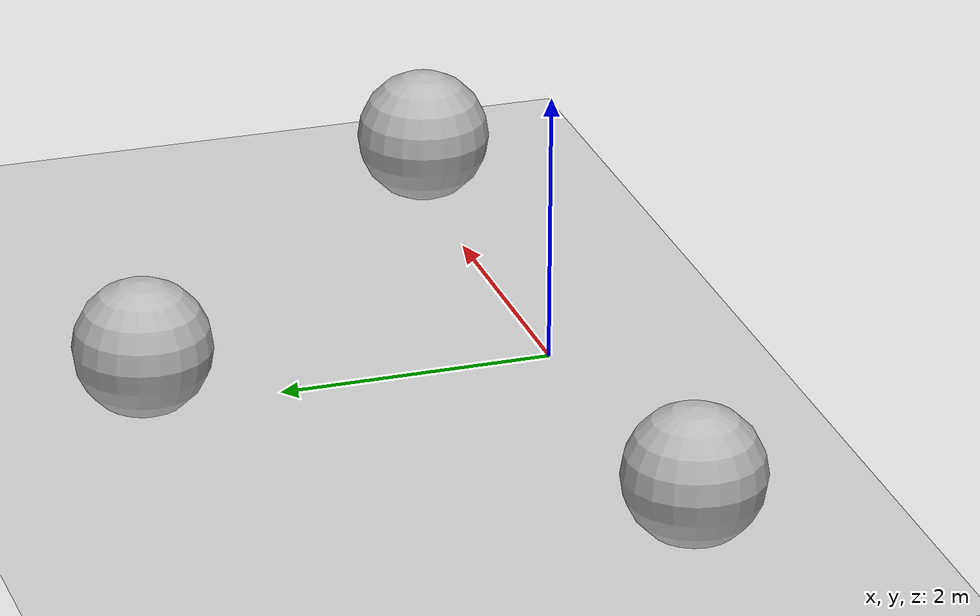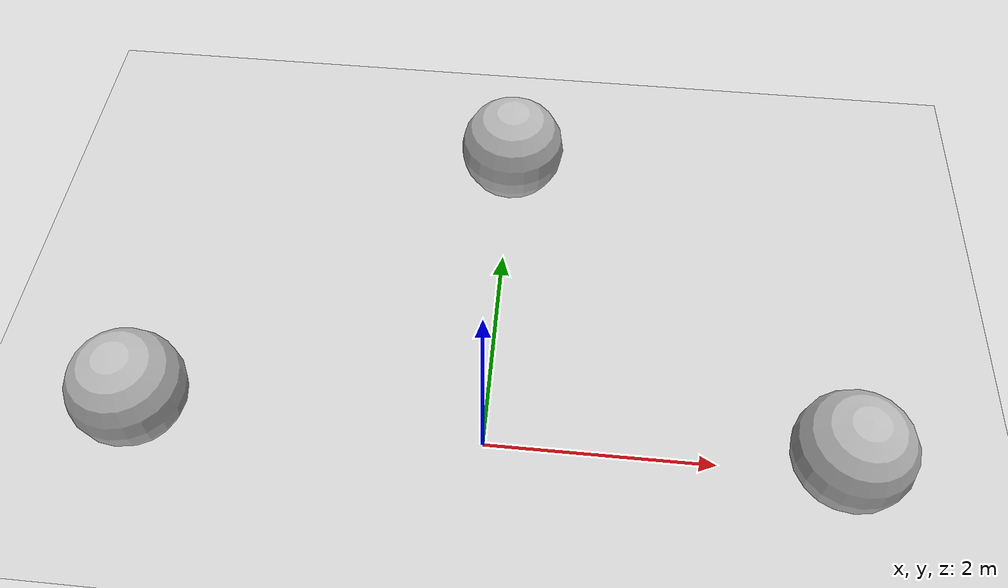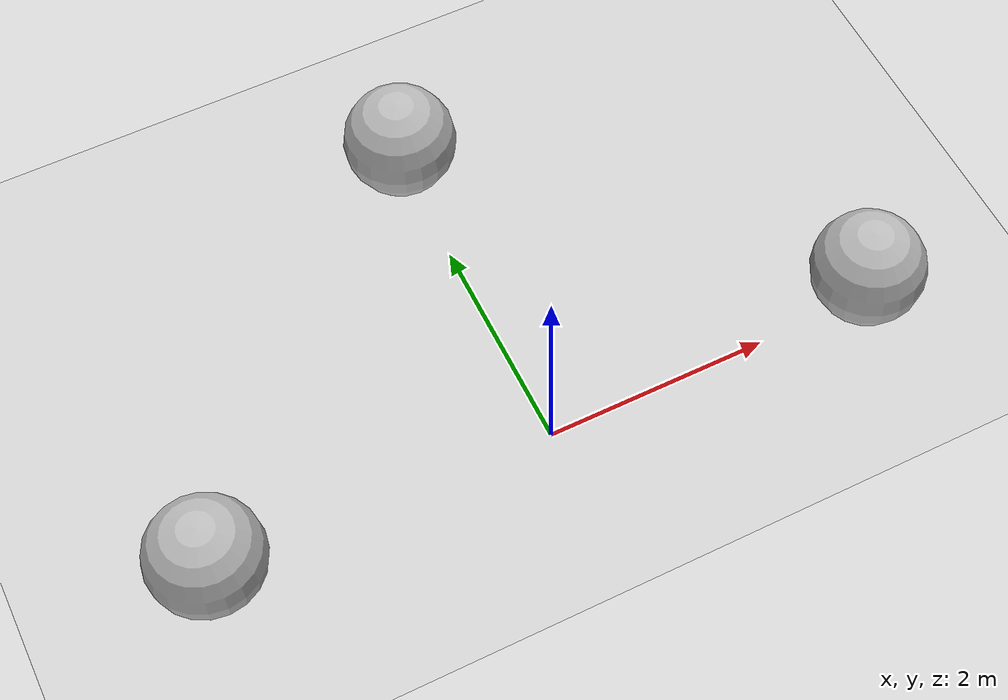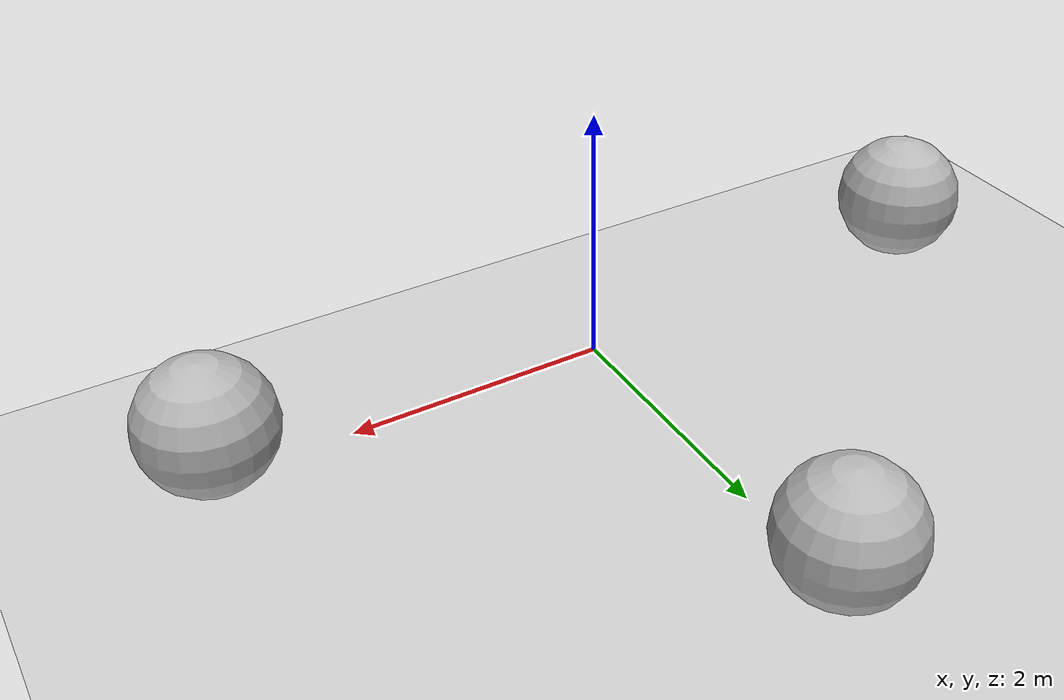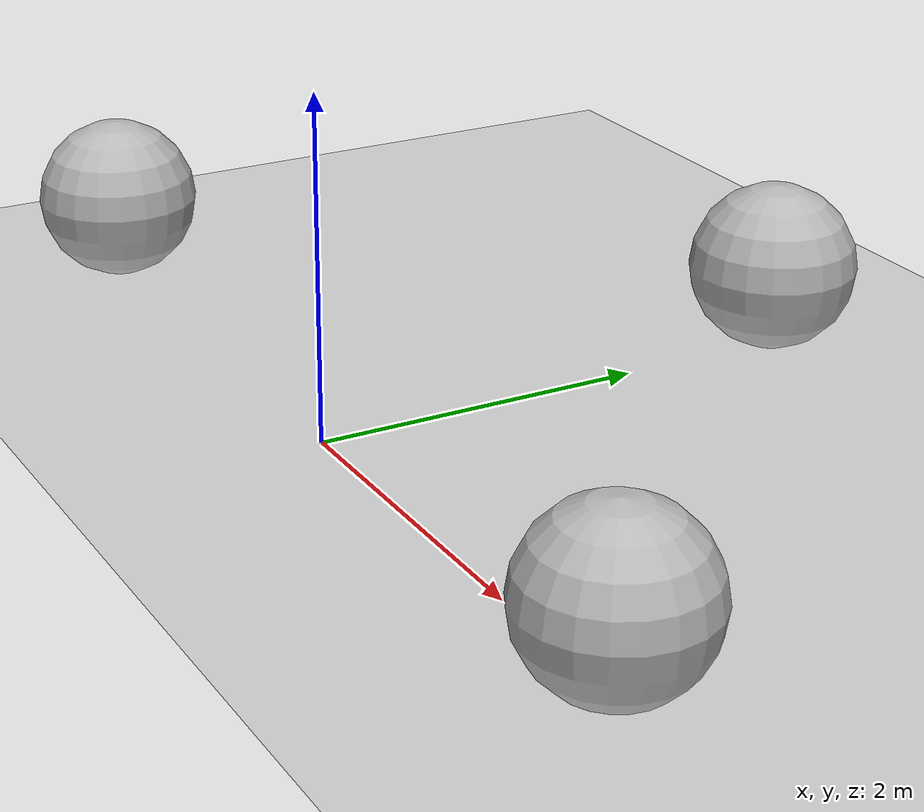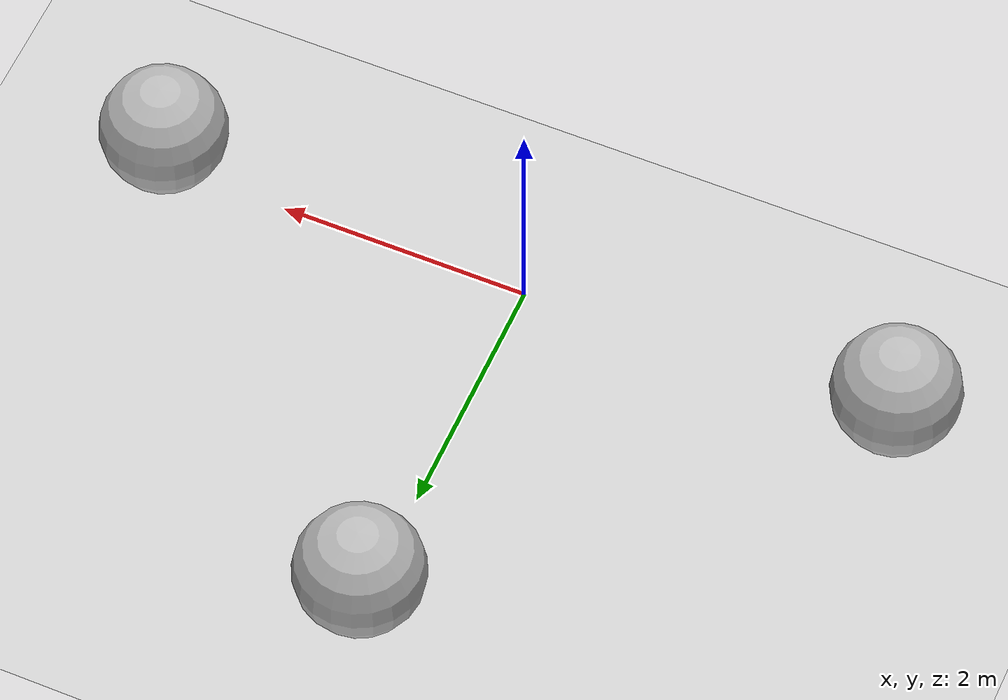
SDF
<?xml version="1.0"?>
<sdf version="1.4">
  <world name="default">

    <include>
      <uri>model://sun</uri>
    </include>
    <include>
      <uri>model://ground_plane</uri>
    </include>

    <model name="my_env">
        <static>true</static>
        <link name="sphere1">
	<pose>-3 0 0.5 0 0 0</pose>
          <collision name='sphere1_collision'>
            <pose>0 0 0 0 0 0</pose>
            <geometry>
                <sphere>
                <radius>.5</radius>
              </sphere>
            </geometry>

            <surface>
              <friction>
                <ode>
                  <mu>0</mu>
                  <mu2>0</mu2>
                  <slip1>1.0</slip1>
                  <slip2>1.0</slip2>
                </ode>
              </friction>
            </surface>
          </collision>

          <visual name='sphere1_visual'>
            <pose>0 0 0 0 0 0</pose>
            <geometry>
              <sphere>
                <radius>.5</radius>
              </sphere>
            </geometry>
          </visual>
        </link>
    </model>

    <model name="my_env2">
        <static>true</static>
        <link name="sphere2">
	<pose>3 0 0.5 0 0 0</pose>
          <collision name='sphere2_collision'>
            <pose>0 0 0 0 0 0</pose>
            <geometry>
                <sphere>
                <radius>.5</radius>
              </sphere>
            </geometry>

            <surface>
              <friction>
                <ode>
                  <mu>0</mu>
                  <mu2>0</mu2>
                  <slip1>1.0</slip1>
                  <slip2>1.0</slip2>
                </ode>
              </friction>
            </surface>
          </collision>

          <visual name='sphere2_visual'>
            <pose>0 0 0 0 0 0</pose>
            <geometry>
              <sphere>
                <radius>.5</radius>
              </sphere>
            </geometry>
          </visual>
        </link>
    </model>

    <model name="my_env3">
        <static>true</static>
        <link name="sphere3">
	<pose>0 3 0.5 0 0 0</pose>
          <collision name='sphere3_collision'>
            <pose>0 0 0 0 0 0</pose>
            <geometry>
                <sphere>
                <radius>.5</radius>
              </sphere>
            </geometry>

            <surface>
              <friction>
                <ode>
                  <mu>0</mu>
                  <mu2>0</mu2>
                  <slip1>1.0</slip1>
                  <slip2>1.0</slip2>
                </ode>
              </friction>
            </surface>
          </collision>

          <visual name='sphere3_visual'>
            <pose>0 0 0 0 0 0</pose>
            <geometry>
              <sphere>
                <radius>.5</radius>
              </sphere>
            </geometry>
          </visual>
        </link>
    </model>

  </world>
</sdf>
